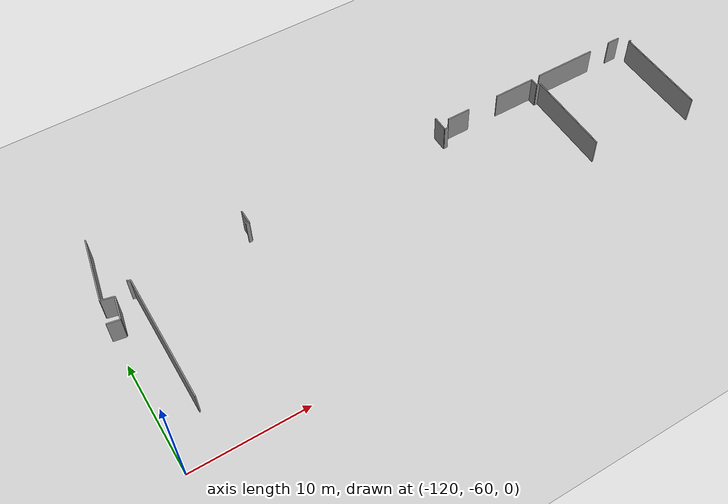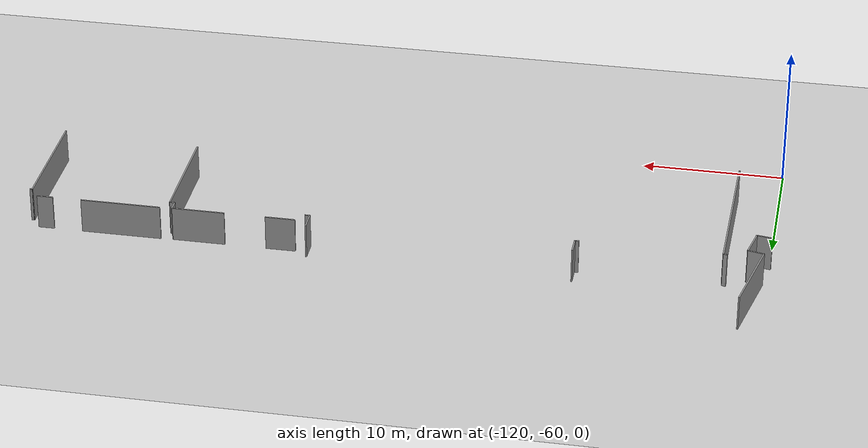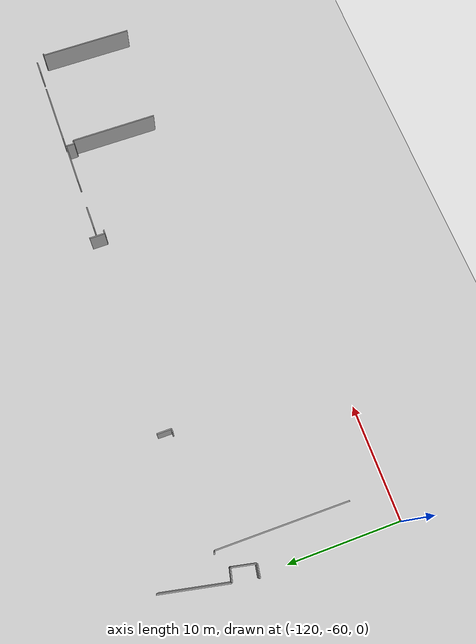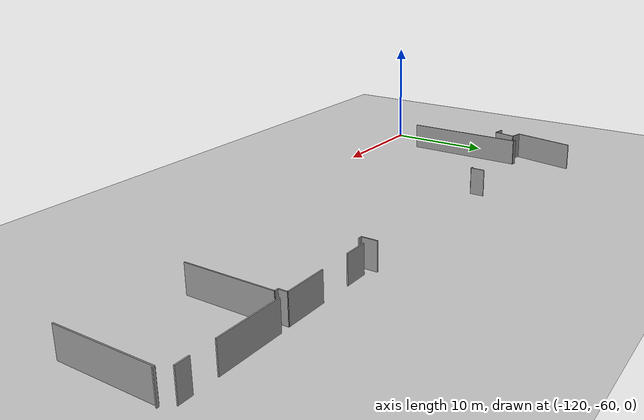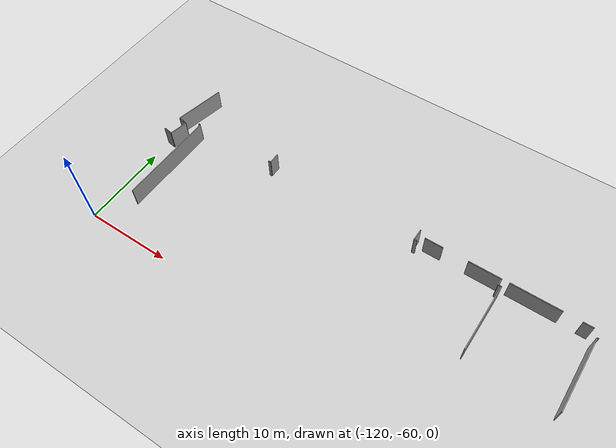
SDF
<sdf version="1.6">
 <world name="default">
  <model name="ground_plane">
   <static>1</static>
   <link name="link">
    <collision name="collision">
     <geometry><plane><normal>0 0 1</normal><size>100 100</size></plane></geometry>
     <surface><friction><ode><mu>100</mu><mu2>50</mu2></ode></friction></surface>
    </collision>
    <visual name="visual">
     <cast_shadows>0</cast_shadows>
     <geometry><plane><normal>0 0 1</normal><size>100 100</size></plane></geometry>
     <material>
      <script><uri>file://media/materials/scripts/gazebo.material</uri><name>Gazebo/Grey</name></script>
     </material>
    </visual>
   </link>
  </model>
  <model name="50036894">
   <static>1</static>
   <link name="Wall_5">
    <collision name="Wall_5_Collision">
     <geometry><box><size>1.10037329204 0.1 2.5</size></box></geometry>
     <pose>0.550186646018 0 1.25 0 0 0</pose>
    </collision>
    <visual name="Wall_5_Visual">
     <pose>0.550186646018 0 1.25 0 0 0</pose>
     <geometry><box><size>1.10037329204 0.1 2.5</size></box></geometry>
     <material>
      <script><uri>file://media/materials/scripts/gazebo.material</uri><name>Gazebo/Grey</name></script>
      <ambient>1 1 1 1</ambient>
     </material>
    </visual>
    <pose>2.69703098352 -114.783711302 0 0 0 -0.169278536859</pose>
   </link>
   <link name="Wall_6">
    <collision name="Wall_6_Collision">
     <geometry><box><size>2.11600762695 0.1 2.5</size></box></geometry>
     <pose>1.05800381348 0 1.25 0 0 0</pose>
    </collision>
    <visual name="Wall_6_Visual">
     <pose>1.05800381348 0 1.25 0 0 0</pose>
     <geometry><box><size>2.11600762695 0.1 2.5</size></box></geometry>
     <material>
      <script><uri>file://media/materials/scripts/gazebo.material</uri><name>Gazebo/Grey</name></script>
      <ambient>1 1 1 1</ambient>
     </material>
    </visual>
    <pose>3.78167616608 -114.969092557 0 0 0 1.36451608159</pose>
   </link>
   <link name="Wall_7">
    <collision name="Wall_7_Collision">
     <geometry><box><size>1.12786752995 0.1 2.5</size></box></geometry>
     <pose>0.563933764975 0 1.25 0 0 0</pose>
    </collision>
    <visual name="Wall_7_Visual">
     <pose>0.563933764975 0 1.25 0 0 0</pose>
     <geometry><box><size>1.12786752995 0.1 2.5</size></box></geometry>
     <material>
      <script><uri>file://media/materials/scripts/gazebo.material</uri><name>Gazebo/Grey</name></script>
      <ambient>1 1 1 1</ambient>
     </material>
    </visual>
    <pose>4.21507775996 -112.89794521 0 0 0 2.91226583465</pose>
   </link>
   <link name="Wall_8">
    <collision name="Wall_8_Collision">
     <geometry><box><size>5.87609077488 0.1 2.5</size></box></geometry>
     <pose>2.93804538744 0 1.25 0 0 0</pose>
    </collision>
    <visual name="Wall_8_Visual">
     <pose>2.93804538744 0 1.25 0 0 0</pose>
     <geometry><box><size>5.87609077488 0.1 2.5</size></box></geometry>
     <material>
      <script><uri>file://media/materials/scripts/gazebo.material</uri><name>Gazebo/Grey</name></script>
      <ambient>1 1 1 1</ambient>
     </material>
    </visual>
    <pose>3.11673820287 -112.641556087 0 0 0 1.36909260126</pose>
   </link>
   <link name="Wall_13">
    <collision name="Wall_13_Collision">
     <geometry><box><size>0.300294931858 0.1 2.5</size></box></geometry>
     <pose>0.150147465929 0 1.25 0 0 0</pose>
    </collision>
    <visual name="Wall_13_Visual">
     <pose>0.150147465929 0 1.25 0 0 0</pose>
     <geometry><box><size>0.300294931858 0.1 2.5</size></box></geometry>
     <material>
      <script><uri>file://media/materials/scripts/gazebo.material</uri><name>Gazebo/Grey</name></script>
      <ambient>1 1 1 1</ambient>
     </material>
    </visual>
    <pose>5.5173113378 -112.069435551 0 0 0 -0.365294250753</pose>
   </link>
   <link name="Wall_14">
    <collision name="Wall_14_Collision">
     <geometry><box><size>11.374765204 0.1 2.5</size></box></geometry>
     <pose>5.687382602 0 1.25 0 0 0</pose>
    </collision>
    <visual name="Wall_14_Visual">
     <pose>5.687382602 0 1.25 0 0 0</pose>
     <geometry><box><size>11.374765204 0.1 2.5</size></box></geometry>
     <material>
      <script><uri>file://media/materials/scripts/gazebo.material</uri><name>Gazebo/Grey</name></script>
      <ambient>1 1 1 1</ambient>
     </material>
    </visual>
    <pose>5.79779241611 -112.176708151 0 0 0 -1.5782874914</pose>
   </link>
   <link name="Wall_29">
    <collision name="Wall_29_Collision">
     <geometry><box><size>0.290117860381 0.1 2.5</size></box></geometry>
     <pose>0.14505893019 0 1.25 0 0 0</pose>
    </collision>
    <visual name="Wall_29_Visual">
     <pose>0.14505893019 0 1.25 0 0 0</pose>
     <geometry><box><size>0.290117860381 0.1 2.5</size></box></geometry>
     <material>
      <script><uri>file://media/materials/scripts/gazebo.material</uri><name>Gazebo/Grey</name></script>
      <ambient>1 1 1 1</ambient>
     </material>
    </visual>
    <pose>15.5682214431 -112.065631558 0 0 0 0.0</pose>
   </link>
   <link name="Wall_30">
    <collision name="Wall_30_Collision">
     <geometry><box><size>1.27332323162 0.1 2.5</size></box></geometry>
     <pose>0.636661615809 0 1.25 0 0 0</pose>
    </collision>
    <visual name="Wall_30_Visual">
     <pose>0.636661615809 0 1.25 0 0 0</pose>
     <geometry><box><size>1.27332323162 0.1 2.5</size></box></geometry>
     <material>
      <script><uri>file://media/materials/scripts/gazebo.material</uri><name>Gazebo/Grey</name></script>
      <ambient>1 1 1 1</ambient>
     </material>
    </visual>
    <pose>15.8583393035 -112.065631558 0 0 0 1.57079632679</pose>
   </link>
   <link name="Wall_93">
    <collision name="Wall_93_Collision">
     <geometry><box><size>0.343627360853 0.1 2.5</size></box></geometry>
     <pose>0.171813680427 0 1.25 0 0 0</pose>
    </collision>
    <visual name="Wall_93_Visual">
     <pose>0.171813680427 0 1.25 0 0 0</pose>
     <geometry><box><size>0.343627360853 0.1 2.5</size></box></geometry>
     <material>
      <script><uri>file://media/materials/scripts/gazebo.material</uri><name>Gazebo/Grey</name></script>
      <ambient>1 1 1 1</ambient>
     </material>
    </visual>
    <pose>34.5506533358 -112.077297136 0 0 0 3.14159265359</pose>
   </link>
   <link name="Wall_94">
    <collision name="Wall_94_Collision">
     <geometry><box><size>1.39986939624 0.1 2.5</size></box></geometry>
     <pose>0.699934698121 0 1.25 0 0 0</pose>
    </collision>
    <visual name="Wall_94_Visual">
     <pose>0.699934698121 0 1.25 0 0 0</pose>
     <geometry><box><size>1.39986939624 0.1 2.5</size></box></geometry>
     <material>
      <script><uri>file://media/materials/scripts/gazebo.material</uri><name>Gazebo/Grey</name></script>
      <ambient>1 1 1 1</ambient>
     </material>
    </visual>
    <pose>34.2070259749 -112.077297136 0 0 0 1.57079632679</pose>
   </link>
   <link name="Wall_99">
    <collision name="Wall_99_Collision">
     <geometry><box><size>0.1765052717 0.1 2.5</size></box></geometry>
     <pose>0.0882526358501 0 1.25 0 0 0</pose>
    </collision>
    <visual name="Wall_99_Visual">
     <pose>0.0882526358501 0 1.25 0 0 0</pose>
     <geometry><box><size>0.1765052717 0.1 2.5</size></box></geometry>
     <material>
      <script><uri>file://media/materials/scripts/gazebo.material</uri><name>Gazebo/Grey</name></script>
      <ambient>1 1 1 1</ambient>
     </material>
    </visual>
    <pose>54.1584616653 -112.084905122 0 0 0 3.14159265359</pose>
   </link>
   <link name="Wall_100">
    <collision name="Wall_100_Collision">
     <geometry><box><size>8.45475467416 0.1 2.5</size></box></geometry>
     <pose>4.22737733708 0 1.25 0 0 0</pose>
    </collision>
    <visual name="Wall_100_Visual">
     <pose>4.22737733708 0 1.25 0 0 0</pose>
     <geometry><box><size>8.45475467416 0.1 2.5</size></box></geometry>
     <material>
      <script><uri>file://media/materials/scripts/gazebo.material</uri><name>Gazebo/Grey</name></script>
      <ambient>1 1 1 1</ambient>
     </material>
    </visual>
    <pose>53.9819563936 -112.084905122 0 0 0 -1.57079632679</pose>
   </link>
   <link name="Wall_109">
    <collision name="Wall_109_Collision">
     <geometry><box><size>2.10031129342 0.1 2.5</size></box></geometry>
     <pose>1.05015564671 0 1.25 0 0 0</pose>
    </collision>
    <visual name="Wall_109_Visual">
     <pose>1.05015564671 0 1.25 0 0 0</pose>
     <geometry><box><size>2.10031129342 0.1 2.5</size></box></geometry>
     <material>
      <script><uri>file://media/materials/scripts/gazebo.material</uri><name>Gazebo/Grey</name></script>
      <ambient>1 1 1 1</ambient>
     </material>
    </visual>
    <pose>35.0786475537 -111.321824141 0 0 0 0.0</pose>
   </link>
   <link name="Wall_110">
    <collision name="Wall_110_Collision">
     <geometry><box><size>3.69418432882 0.1 2.5</size></box></geometry>
     <pose>1.84709216441 0 1.25 0 0 0</pose>
    </collision>
    <visual name="Wall_110_Visual">
     <pose>1.84709216441 0 1.25 0 0 0</pose>
     <geometry><box><size>3.69418432882 0.1 2.5</size></box></geometry>
     <material>
      <script><uri>file://media/materials/scripts/gazebo.material</uri><name>Gazebo/Grey</name></script>
      <ambient>1 1 1 1</ambient>
     </material>
    </visual>
    <pose>40.0664430764 -111.321824141 0 0 0 0.0</pose>
   </link>
   <link name="Wall_111">
    <collision name="Wall_111_Collision">
     <geometry><box><size>0.769167369349 0.1 2.5</size></box></geometry>
     <pose>0.384583684674 0 1.25 0 0 0</pose>
    </collision>
    <visual name="Wall_111_Visual">
     <pose>0.384583684674 0 1.25 0 0 0</pose>
     <geometry><box><size>0.769167369349 0.1 2.5</size></box></geometry>
     <material>
      <script><uri>file://media/materials/scripts/gazebo.material</uri><name>Gazebo/Grey</name></script>
      <ambient>1 1 1 1</ambient>
     </material>
    </visual>
    <pose>43.7606274052 -111.321824141 0 0 0 -1.57079632679</pose>
   </link>
   <link name="Wall_112">
    <collision name="Wall_112_Collision">
     <geometry><box><size>0.340330566985 0.1 2.5</size></box></geometry>
     <pose>0.170165283493 0 1.25 0 0 0</pose>
    </collision>
    <visual name="Wall_112_Visual">
     <pose>0.170165283493 0 1.25 0 0 0</pose>
     <geometry><box><size>0.340330566985 0.1 2.5</size></box></geometry>
     <material>
      <script><uri>file://media/materials/scripts/gazebo.material</uri><name>Gazebo/Grey</name></script>
      <ambient>1 1 1 1</ambient>
     </material>
    </visual>
    <pose>43.7606274052 -112.090991511 0 0 0 0.0</pose>
   </link>
   <link name="Wall_113">
    <collision name="Wall_113_Collision">
     <geometry><box><size>7.87756214773 0.1 2.5</size></box></geometry>
     <pose>3.93878107387 0 1.25 0 0 0</pose>
    </collision>
    <visual name="Wall_113_Visual">
     <pose>3.93878107387 0 1.25 0 0 0</pose>
     <geometry><box><size>7.87756214773 0.1 2.5</size></box></geometry>
     <material>
      <script><uri>file://media/materials/scripts/gazebo.material</uri><name>Gazebo/Grey</name></script>
      <ambient>1 1 1 1</ambient>
     </material>
    </visual>
    <pose>44.1009579722 -112.090991511 0 0 0 -1.57079632679</pose>
   </link>
   <link name="Wall_116">
    <collision name="Wall_116_Collision">
     <geometry><box><size>5.64411110195 0.1 2.5</size></box></geometry>
     <pose>2.82205555098 0 1.25 0 0 0</pose>
    </collision>
    <visual name="Wall_116_Visual">
     <pose>2.82205555098 0 1.25 0 0 0</pose>
     <geometry><box><size>5.64411110195 0.1 2.5</size></box></geometry>
     <material>
      <script><uri>file://media/materials/scripts/gazebo.material</uri><name>Gazebo/Grey</name></script>
      <ambient>1 1 1 1</ambient>
     </material>
    </visual>
    <pose>44.6101858251 -111.273133032 0 0 0 0.0</pose>
   </link>
   <link name="Wall_117">
    <collision name="Wall_117_Collision">
     <geometry><box><size>1.13587228728 0.1 2.5</size></box></geometry>
     <pose>0.567936143639 0 1.25 0 0 0</pose>
    </collision>
    <visual name="Wall_117_Visual">
     <pose>0.567936143639 0 1.25 0 0 0</pose>
     <geometry><box><size>1.13587228728 0.1 2.5</size></box></geometry>
     <material>
      <script><uri>file://media/materials/scripts/gazebo.material</uri><name>Gazebo/Grey</name></script>
      <ambient>1 1 1 1</ambient>
     </material>
    </visual>
    <pose>52.2653411865 -111.273133032 0 0 0 0.0</pose>
   </link>
   <pose>-122.8 67.3347215794 0 0 0 0</pose>
  </model>
 </world>
</sdf>
